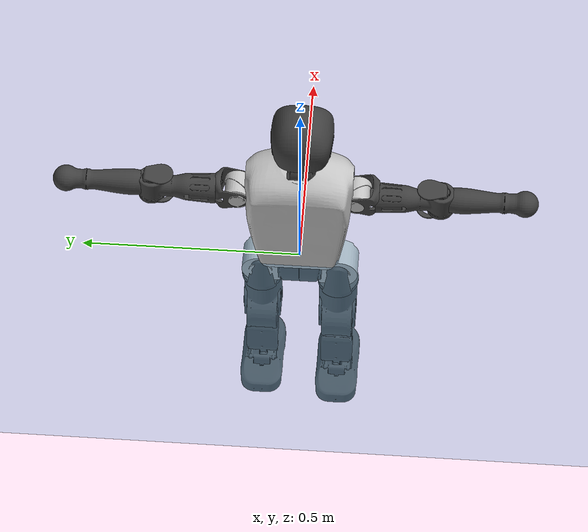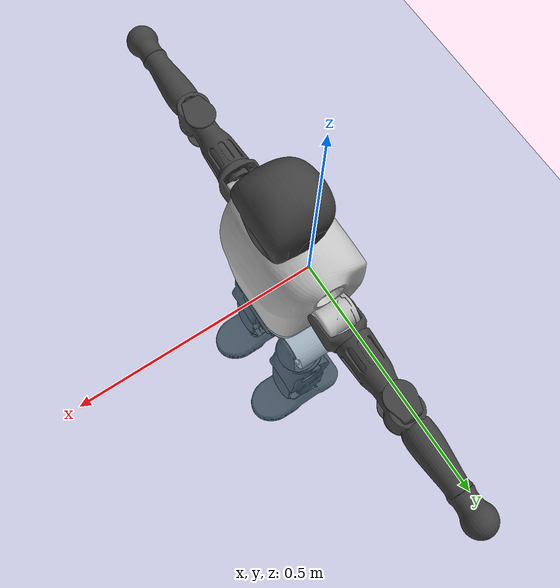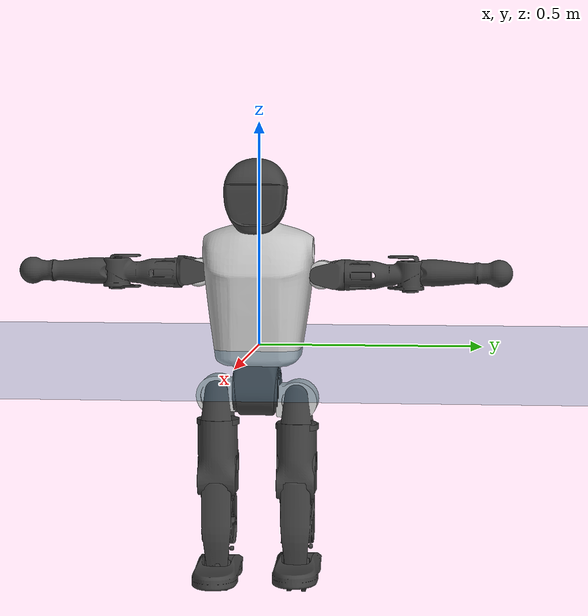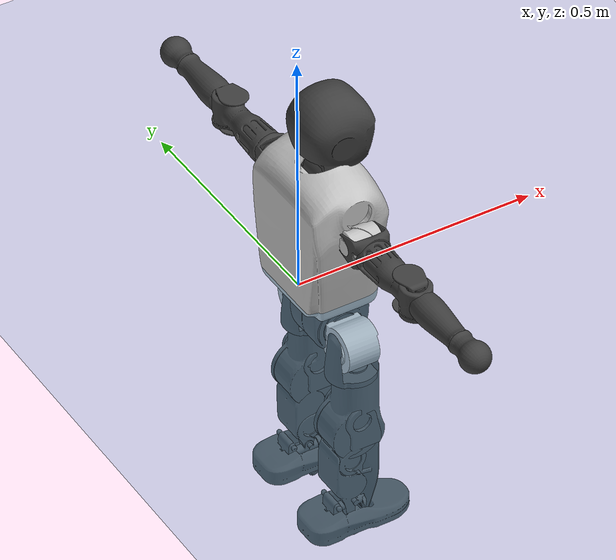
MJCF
<mujoco model="T1">
  <compiler angle="radian" assetdir="assets" balanceinertia="true" inertiafromgeom="false"/>

  <option timestep="0.005" density="1.2" viscosity="2e-05"/>

  <size nkey="1"/>

  <visual>
    <quality shadowsize="8192"/>
    <map shadowclip="0.5"/>
  </visual>

  <default>
    <default class="/">
      <joint armature="0.01" damping="0.01" frictionloss="0.1"/>
      <geom contype="0" conaffinity="0" group="1" solref="-1000 -80"/>
      <site size="0.01 0.005 0.005" group="5"/>
      <general forcelimited="true" biastype="affine" gainprm="25" biasprm="0 -25 -0.6"/>
      <default class="t1">
        <geom rgba="0.25 0.25 0.25 1"/>
        <default class="visual">
          <geom type="mesh" group="2"/>
        </default>
        <default class="collision">
          <geom group="3"/>
        </default>
        <default class="foot">
          <geom size="0.1115 0.05 0.015" type="box" condim="6" group="4" priority="1" solimp="0.015 1 0.015"/>
        </default>
        <default class="reward_collision_sphere">
          <geom group="5" rgba="1 0 0 1"/>
        </default>
      </default>
    </default>
  </default>

  <asset>
    <texture type="skybox" colorspace="auto" name="//unnamed_texture_0" builtin="gradient" rgb1="0.95 0.95 0.95" rgb2="0.95 0.95 0.95" width="100" height="600"/>
    <texture type="2d" colorspace="auto" name="texplane" builtin="checker" rgb1="0.345 0.575 0.748" rgb2="0.345 0.575 0.748" markrgb="1 1 1" width="512" height="512"/>
    <material name="MatPlane" class="/" texture="texplane" texuniform="true" texrepeat="2 2" specular="0.9"/>
    <mesh name="Trunk" class="/" file="Trunk.stl"/>
    <mesh name="H1" class="/" file="H1.stl"/>
    <mesh name="H2" class="/" file="H2.stl"/>
    <mesh name="AL1" class="/" file="AL1.stl"/>
    <mesh name="AL2" class="/" file="AL2.stl"/>
    <mesh name="AL3" class="/" file="AL3.stl"/>
    <mesh name="left_hand_link" class="/" file="left_hand_link.stl"/>
    <mesh name="AR1" class="/" file="AR1.stl"/>
    <mesh name="AR2" class="/" file="AR2.stl"/>
    <mesh name="AR3" class="/" file="AR3.stl"/>
    <mesh name="right_hand_link" class="/" file="right_hand_link.stl"/>
    <mesh name="Waist" class="/" file="Waist.stl"/>
    <mesh name="Hip_Pitch_Left" class="/" file="Hip_Pitch_Left.stl"/>
    <mesh name="Hip_Roll_Left" class="/" file="Hip_Roll_Left.stl"/>
    <mesh name="Hip_Yaw_Left" class="/" file="Hip_Yaw_Left.stl"/>
    <mesh name="Shank_Left" class="/" file="Shank_Left.stl"/>
    <mesh name="Ankle_Cross_Left" class="/" file="Ankle_Cross_Left.stl"/>
    <mesh name="left_foot_link" class="/" file="left_foot_link.stl"/>
    <mesh name="Hip_Pitch_Right" class="/" file="Hip_Pitch_Right.stl"/>
    <mesh name="Hip_Roll_Right" class="/" file="Hip_Roll_Right.stl"/>
    <mesh name="Hip_Yaw_Right" class="/" file="Hip_Yaw_Right.stl"/>
    <mesh name="Shank_Right" class="/" file="Shank_Right.stl"/>
    <mesh name="Ankle_Cross_Right" class="/" file="Ankle_Cross_Right.stl"/>
    <mesh name="right_foot_link" class="/" file="right_foot_link.stl"/>
  </asset>

  <worldbody>
    <geom name="floor" class="/" size="100 100 0.125" type="plane" group="0" material="MatPlane"/>
    <light name="toplight_shadow" class="/" pos="0 0 5" dir="0.0990148 0.0990148 -0.990148" type="directional" ambient="0.04 0.04 0.04" diffuse="0.55 0.55 0.55" specular="0.12 0.12 0.12"/>
    <light name="toplight_fill" class="/" pos="0 0 5" dir="0.0990148 0.0990148 -0.990148" type="directional" castshadow="false" ambient="0.04 0.04 0.04" diffuse="0.3 0.3 0.3" specular="0.08 0.08 0.08"/>
    <body name="trunk" childclass="t1" pos="-0.00125685 0.00356539 -0.0020469" quat="0.999998 -0.00172147 7.98052e-05 -0.000978103">
      <inertial pos="0.0531806 0.00139334 0.0819859" quat="0.999978 0.00202354 -0.00633936 0.000283987" mass="7.52762" diaginertia="0.0770432 0.0326268 0.0128177"/>
      <joint name="//unnamed_joint_0" type="free" armature="0" damping="0" frictionloss="0"/>
      <geom name="//unnamed_geom_1" class="visual" rgba="0.76 0.76 0.76 1" mesh="Trunk"/>
      <geom name="//unnamed_geom_2" class="collision" size="0.064906 0.0865414 0.129812" pos="0.0586928 0 0.0919741" type="box"/>
      <geom name="//unnamed_geom_3" class="reward_collision_sphere" size="0.0995226" pos="0.0586928 0 0.0766451"/>
      <geom name="//unnamed_geom_4" class="reward_collision_sphere" size="0.0129812" pos="0.0586928 0.072384 0"/>
      <geom name="//unnamed_geom_5" class="reward_collision_sphere" size="0.0129812" pos="0.0586928 -0.072384 0"/>
      <geom name="//unnamed_geom_6" class="reward_collision_sphere" size="0.0129812" pos="0.0586928 0.0911187 0.137961"/>
      <geom name="//unnamed_geom_7" class="reward_collision_sphere" size="0.0129812" pos="0.0586928 -0.0911187 0.137961"/>
      <site name="imu" pos="-0.0102396 -0.0104489 0.0108923" size="0.00865414"/>
      <camera name="track" pos="0 -1.70315 0" quat="0.707107 0.707107 0 0" mode="trackcom"/>
      <camera name="ego_camera" pos="0.119342 0 0.321909" quat="-0.5 -0.5 0.5 0.5"/>
      <body name="H1" pos="0.0570287 -0.00407051 0.187931" quat="1 -2.01819e-05 0.000169282 2.68899e-05">
        <inertial pos="0.00187097 -0.000448843 0.0418672" quat="0.76283 -0.0256934 0.0315448 0.645318" mass="0.279219" diaginertia="0.000222903 9.86166e-05 3.93957e-05"/>
        <joint name="AAHead_yaw" pos="0 0 0" axis="-0.00425334 0.0105586 0.999935" range="-1.58712 1.62216" armature="0.00987054" damping="0" frictionloss="0.0585116"/>
        <geom name="//unnamed_geom_8" class="visual" mesh="H1"/>
        <body name="H2" pos="-0.0032291 -1.30803e-05 0.046331" quat="1 5.71638e-05 -0.000264477 -0.000300533">
          <inertial pos="0.00869282 -0.000538086 0.0763282" quat="0.988581 0.102584 -0.078561 -0.0775383" mass="0.415407" diaginertia="0.00189227 0.000912509 0.000447425"/>
          <joint name="Head_pitch" pos="0 0 0" axis="-0.00113279 -0.999923 -0.0123834" range="-1.26055 0.390979" armature="0.0109511" damping="0.00365897" frictionloss="0.0771746"/>
          <geom name="//unnamed_geom_9" class="visual" mesh="H2"/>
          <geom name="//unnamed_geom_10" class="collision" size="0.0692331" pos="0.00978214 0 0.0843096"/>
          <geom name="//unnamed_geom_11" class="reward_collision_sphere" size="0.0778872" pos="0.0195643 0 0.0766451"/>
        </body>
      </body>
      <body name="AL1" pos="0.0568486 0.0946073 0.165619" quat="1 -2.00074e-05 0.000688295 0.000323713">
        <inertial pos="-0.000969886 0.0388528 0.00111711" quat="0.480477 0.494595 -0.518498 0.505645" mass="0.329875" diaginertia="0.00121702 0.000575633 7.34771e-05"/>
        <joint name="Left_Shoulder_Pitch" pos="0 0 0" axis="0.000749618 1 -0.000462247" range="-3.30874 1.2415" armature="0.00845312" damping="0.00312244" frictionloss="0.0758863"/>
        <geom name="//unnamed_geom_12" class="visual" rgba="0.76 0.76 0.76 1" mesh="AL1"/>
        <body name="AL2" pos="0.0016349 0.0414765 -0.000518285" quat="1 -1.11353e-06 3.73136e-06 -2.04012e-06">
          <inertial pos="0.00516247 0.0324665 -0.00102188" quat="0.488087 0.511651 -0.488068 0.511638" mass="0.102273" diaginertia="0.000351642 0.000155235 4.41616e-05"/>
          <joint name="Left_Shoulder_Roll" pos="0 0 0" axis="-0.999938 0.0078268 -0.00792312" range="-1.59252 1.72784" armature="0.00867101" damping="0" frictionloss="0.076985"/>
          <geom name="//unnamed_geom_13" class="visual" mesh="AL2"/>
          <body name="AL3" pos="-0.00291871 0.0535181 0.000133317" quat="0.999999 -0.000372918 0.000468926 -0.000928067">
            <inertial pos="0.00510792 0.0743798 0.000638792" quat="0.708076 0.706035 0.00179947 -0.0118152" mass="0.649178" diaginertia="0.0116205 0.00608308 0.000168601"/>
            <joint name="Left_Elbow_Pitch" pos="0 0 0" axis="-0.00275409 -0.999971 0.00705505" range="-2.27033 2.27678" armature="0.00897104" damping="0.00374708" frictionloss="0.0759643"/>
            <geom name="//unnamed_geom_14" class="visual" mesh="AL3"/>
            <geom name="//unnamed_geom_15" class="collision" size="0.0259624 0.064906" pos="0 0.0425788 0" quat="0.707105 0.707108 0 0" type="cylinder"/>
            <geom name="//unnamed_geom_16" class="reward_collision_sphere" size="0.0311549"/>
            <body name="left_hand_link" pos="0.000123146 0.12522 0.00632323" quat="0.999998 -0.000103783 -0.000613157 -0.00203769">
              <inertial pos="-0.000361358 0.0946832 -0.000873336" quat="0.708073 0.706139 -9.36538e-05 -0.000183436" mass="0.217417" diaginertia="0.0074284 0.00375969 6.28948e-05"/>
              <joint name="Left_Elbow_Yaw" pos="0 0 0" axis="-0.0116828 0.00700002 0.999907" range="-2.49258 -0.0267818" armature="0.00767946" damping="0.020262" frictionloss="0.0870254"/>
              <geom name="//unnamed_geom_17" class="visual" mesh="left_hand_link"/>
              <geom name="//unnamed_geom_18" class="collision" size="0.0259624 0.0757237" pos="0 0.110705 0" quat="0.707105 0.707108 0 0" type="cylinder"/>
              <geom name="//unnamed_geom_19" class="reward_collision_sphere" size="0.0432707"/>
              <geom name="//unnamed_geom_20" class="reward_collision_sphere" size="0.0302895" pos="0 0.0936734 0"/>
              <geom name="//unnamed_geom_21" class="reward_collision_sphere" size="0.0302895" pos="0 0.183089 0"/>
            </body>
          </body>
        </body>
      </body>
      <body name="AR1" pos="0.055984 -0.0849433 0.168714" quat="0.999999 0.000364557 -0.00105283 -0.000114131">
        <inertial pos="-0.000115021 -0.0349362 -0.00512416" quat="0.497821 0.503589 -0.507981 0.490436" mass="0.342573" diaginertia="0.00121459 0.000616686 7.72967e-05"/>
        <joint name="Right_Shoulder_Pitch" pos="0 0 0" axis="-0.0232823 -0.999721 -0.00405071" range="-1.27475 3.27307" armature="0.00935754" damping="0.0107218" frictionloss="0.0758373"/>
        <geom name="//unnamed_geom_22" class="visual" rgba="0.76 0.76 0.76 1" mesh="AR1"/>
        <body name="AR2" pos="-0.000356218 -0.0396547 0.00245383" quat="1 0.000195464 -0.00010143 9.66549e-05">
          <inertial pos="0.00422149 -0.0322866 0.000789644" quat="0.51108 0.488544 -0.511725 0.488118" mass="0.0980415" diaginertia="0.000327234 0.000139598 4.63534e-05"/>
          <joint name="Right_Shoulder_Roll" pos="0 0 0" axis="-0.999994 -0.00351875 -0.000433519" range="-1.73832 1.54918" armature="0.0105056" damping="0.00694856" frictionloss="0.0762796"/>
          <geom name="//unnamed_geom_23" class="visual" mesh="AR2"/>
          <body name="AR3" pos="-0.0022506 -0.0479024 -0.00425889" quat="0.999999 0.000697833 -0.000647953 0.00106583">
            <inertial pos="-0.00634699 -0.070832 -0.00379641" quat="0.706533 0.707679 -0.00121647 -0.000736883" mass="0.671728" diaginertia="0.012451 0.00583034 0.000164325"/>
            <joint name="Right_Elbow_Pitch" pos="0 0 0" axis="0.000241932 1 0.000234175" range="-2.31971 2.26731" armature="0.00826177" damping="0.00165411" frictionloss="0.0585918"/>
            <geom name="//unnamed_geom_24" class="visual" mesh="AR3"/>
            <geom name="//unnamed_geom_25" class="collision" size="0.0259624 0.064906" pos="0 -0.0425788 0" quat="0.707105 0.707108 0 0" type="cylinder"/>
            <geom name="//unnamed_geom_26" class="reward_collision_sphere" size="0.0311549"/>
            <body name="right_hand_link" pos="0.000661635 -0.121074 0.0030585" quat="1 0.000199201 -9.62356e-05 0.000370248">
              <inertial pos="-0.00042679 -0.0910468 -0.00137623" quat="0.707864 0.706345 0.00221654 -0.000163286" mass="0.20417" diaginertia="0.00678058 0.00337764 5.25043e-05"/>
              <joint name="Right_Elbow_Yaw" pos="0 0 0" axis="0.0231091 0.0177052 0.999576" range="-0.0396772 2.44524" armature="0.00829286" damping="0.00212345" frictionloss="0.0856669"/>
              <geom name="//unnamed_geom_27" class="visual" mesh="right_hand_link"/>
              <geom name="//unnamed_geom_28" class="collision" size="0.0259624 0.0757237" pos="0 -0.110705 0" quat="0.707105 0.707108 0 0" type="cylinder"/>
              <geom name="//unnamed_geom_29" class="reward_collision_sphere" size="0.0432707"/>
              <geom name="//unnamed_geom_30" class="reward_collision_sphere" size="0.0302895" pos="0 -0.0936734 0"/>
              <geom name="//unnamed_geom_31" class="reward_collision_sphere" size="0.0302895" pos="0 -0.183089 0"/>
            </body>
          </body>
        </body>
      </body>
      <body name="Waist" pos="0.0676001 -0.00169691 -0.089962" quat="0.999996 -0.000481071 0.00208008 -0.00171794">
        <inertial pos="0.00704484 -0.00212251 0.0073165" quat="0.986035 0.00174674 -0.165418 -0.019193" mass="1.7171" diaginertia="0.00467628 0.00225674 0.00118761"/>
        <joint name="Waist" pos="0 0 0" axis="-0.0032666 0.00152119 0.999994" range="-1.56921 1.61771" armature="0.00891925" damping="0.0102661" frictionloss="0.0847659"/>
        <geom name="//unnamed_geom_32" class="visual" mesh="Waist"/>
        <body name="Hip_Pitch_Left" pos="0.0038581 0.0922453 -0.00333885" quat="0.999999 -0.000390958 0.000104871 0.0010526">
          <inertial pos="-0.00383799 -0.00478838 -0.0148532" quat="0.973418 0.228992 -0.00380046 0.00224686" mass="0.674329" diaginertia="0.00169241 0.000629805 0.000321288"/>
          <joint name="Left_Hip_Pitch" pos="0 0 0" axis="-0.00435199 0.999909 -0.0127949" range="-1.78076 1.52091" armature="0.00858585" damping="0.0106222" frictionloss="0.0923748"/>
          <geom name="//unnamed_geom_33" class="visual" rgba="0.76 0.76 0.76 1" mesh="Hip_Pitch_Left"/>
          <body name="Hip_Roll_Left" pos="0.00576576 -0.00108864 -0.00677854" quat="1 8.6629e-06 -1.99676e-05 -3.1307e-05">
            <inertial pos="-5.75463e-05 0.00581073 -0.042286" quat="0.707401 -0.00623807 -0.00735902 0.706746" mass="0.256971" diaginertia="0.00167467 0.000741863 0.000128371"/>
            <joint name="Left_Hip_Roll" pos="0 0 0" axis="-0.999995 -0.0029691 -0.00112512" range="-1.61686 0.203533" armature="0.00966121" damping="0.0373604" frictionloss="0.0764132"/>
            <geom name="//unnamed_geom_34" class="visual" mesh="Hip_Roll_Left"/>
            <geom name="//unnamed_geom_35" class="reward_collision_sphere" size="0.0475978"/>
            <body name="Hip_Yaw_Left" pos="0.00547537 -0.000851472 -0.0610797" quat="1 -6.55269e-06 -0.000146751 -0.000146875">
              <inertial pos="-0.00457795 0.00121299 -0.0666936" quat="0.702205 -0.0380911 -0.0322473 0.710223" mass="1.45102" diaginertia="0.0236212 0.0122179 0.000731557"/>
              <joint name="Left_Hip_Yaw" pos="0 0 0" axis="0.000352925 -0.00107005 -0.999999" stiffness="0.018032" range="-0.888097 0.960399" armature="0.00879587" damping="0.00141003" frictionloss="0.0838984"/>
              <geom name="//unnamed_geom_36" class="visual" mesh="Hip_Yaw_Left"/>
              <geom name="//unnamed_geom_37" class="collision" size="0.0432707 0.0692331" type="cylinder"/>
              <body name="Shank_Left" pos="-0.00701812 0.000632565 -0.0923932" quat="1 0.000110447 0.000154483 4.01243e-06">
                <inertial pos="-0.00334267 0.00103905 -0.094297" quat="0.997598 -0.000215667 -0.0246863 0.0647144" mass="1.15136" diaginertia="0.0314798 0.01706 0.000523045"/>
                <joint name="Left_Knee_Pitch" pos="0 0 0" axis="0.000281008 0.999994 0.0033712" stiffness="0.00137999" range="-0.00627819 2.35869" armature="0.00793808" damping="0.0120619" frictionloss="0.0804409"/>
                <geom name="//unnamed_geom_38" class="visual" mesh="Shank_Left"/>
                <geom name="//unnamed_geom_39" class="collision" size="0.0432707 0.064906" pos="0 0 -0.0919741" type="cylinder"/>
                <geom name="//unnamed_geom_40" class="reward_collision_sphere" size="0.0562519"/>
                <body name="Ankle_Cross_Left" pos="-0.00446061 -0.000501026 -0.221142" quat="1 -1.81446e-05 -1.41562e-05 -8.02381e-06">
                  <inertial pos="0.00297251 0.00300876 -0.00635623" quat="0.440974 0.551988 0.554159 0.44018" mass="0.0483961" diaginertia="2.59421e-05 1.14404e-05 3.02729e-06"/>
                  <joint name="Left_Ankle_Pitch" pos="0 0 0" axis="0.00010802 1 6.32032e-05" stiffness="0.0112724" range="-0.866864 0.362852" armature="0.00608604" damping="0" frictionloss="0.0923919"/>
                  <geom name="//unnamed_geom_41" class="visual" mesh="Ankle_Cross_Left"/>
                  <body name="left_foot_link" pos="-0.00195657 0.00146228 -0.010525" quat="0.999995 0.00300309 0.00129406 -0.000320931">
                    <inertial pos="0.00204469 0.000278886 -0.00946491" quat="-0.00789203 0.619364 -0.0202599 0.784803" mass="0.416991" diaginertia="0.00223868 0.00104069 0.000550835"/>
                    <joint name="Left_Ankle_Roll" pos="0 0 0" axis="-0.999527 -0.0259546 -0.0164696" range="-0.411237 0.418161" armature="0.00823223" damping="0.0187759" frictionloss="0.0764359"/>
                    <geom name="//unnamed_geom_42" class="visual" mesh="left_foot_link"/>
                    <geom name="left_foot" class="foot" size="0.097392 0.0523193 0.0112622" pos="0.00978214 0 -0.0114968"/>
                    <geom name="//unnamed_geom_44" class="reward_collision_sphere" size="0.0450015" pos="0.00978214 0 -0.0114968"/>
                    <geom name="//unnamed_geom_45" class="reward_collision_sphere" size="0.0259624" pos="0.0929303 -0.0195863 -0.0114968"/>
                    <geom name="//unnamed_geom_46" class="reward_collision_sphere" size="0.0259624" pos="-0.068475 -0.0195863 -0.0114968"/>
                    <site name="left_foot" class="foot" pos="0.00978214 0 -0.0114968" size="0.00865414"/>
                  </body>
                </body>
              </body>
            </body>
          </body>
        </body>
        <body name="Hip_Pitch_Right" pos="-0.00404162 -0.089954 0.00603691" quat="1 0.000493755 0.0004268 5.7473e-05">
          <inertial pos="0.00566708 0.0103732 -0.0151604" quat="0.974037 -0.226111 0.0101051 0.00489094" mass="0.665387" diaginertia="0.00157523 0.000631324 0.000338154"/>
          <joint name="Right_Hip_Pitch" pos="0 0 0" axis="-0.00709846 -0.999972 -0.00232453" range="-1.61477 1.81886" armature="0.0081023" damping="0.0312185" frictionloss="0.091655"/>
          <geom name="//unnamed_geom_47" class="visual" rgba="0.76 0.76 0.76 1" mesh="Hip_Pitch_Right"/>
          <body name="Hip_Roll_Right" pos="0.000586959 0.00209851 -0.00940766" quat="1 -0.000200951 0.000106333 0.000101695">
            <inertial pos="0.0027972 0.00134432 -0.0426766" quat="0.710101 0.00366484 -0.0195995 0.703817" mass="0.24533" diaginertia="0.00141625 0.000642757 0.000130282"/>
            <joint name="Right_Hip_Roll" pos="0 0 0" axis="-0.999996 -0.00280411 0.00105715" range="-0.24982 1.58878" armature="0.0082967" damping="0.0175014" frictionloss="0.0801154"/>
            <geom name="//unnamed_geom_48" class="visual" mesh="Hip_Roll_Right"/>
            <geom name="//unnamed_geom_49" class="reward_collision_sphere" size="0.0475978"/>
            <body name="Hip_Yaw_Right" pos="0.00558094 -0.000115635 -0.0653165" quat="1 0.000451796 -8.90176e-05 0.000571793">
              <inertial pos="-0.00834229 -0.00162701 -0.0691101" quat="0.712075 -0.0319448 -0.0345785 0.700523" mass="1.34604" diaginertia="0.020892 0.0107467 0.000617279"/>
              <joint name="Right_Hip_Yaw" pos="0 0 0" axis="0.00261608 -0.000667077 -0.999996" range="-1.00938 1.00651" armature="0.00965904" damping="0" frictionloss="0.0793772"/>
              <geom name="//unnamed_geom_50" class="visual" mesh="Hip_Yaw_Right"/>
              <geom name="//unnamed_geom_51" class="collision" size="0.0432707 0.0692331" type="cylinder"/>
              <body name="Shank_Right" pos="-0.0103612 0.000206815 -0.101212" quat="1 -0.000254315 0.000438758 0.000610888">
                <inertial pos="-0.00667084 0.00312665 -0.093175" quat="0.999582 0.00253462 -0.0190789 -0.021581" mass="1.09239" diaginertia="0.0304944 0.0154782 0.000538667"/>
                <joint name="Right_Knee_Pitch" pos="0 0 0" axis="0.00897037 -0.999958 0.00212786" stiffness="0.00154036" range="-2.25168 0.00252787" armature="0.00773298" damping="0.00943594" frictionloss="0.0762497"/>
                <geom name="//unnamed_geom_52" class="visual" mesh="Shank_Right"/>
                <geom name="//unnamed_geom_53" class="collision" size="0.0432707 0.064906" pos="0 0 -0.0919741" type="cylinder"/>
                <geom name="//unnamed_geom_54" class="reward_collision_sphere" size="0.0562519"/>
                <body name="Ankle_Cross_Right" pos="0.00283404 0.00176663 -0.216648" quat="1 0.000283958 -0.000100045 0.000222684">
                  <inertial pos="-0.00501556 0.000452079 -0.00622104" quat="0.442877 0.550663 0.552549 0.44195" mass="0.0484171" diaginertia="2.49528e-05 1.18002e-05 2.88242e-06"/>
                  <joint name="Right_Ankle_Pitch" pos="0 0 0" axis="-0.00386442 -0.99981 -0.019117" stiffness="0.0111047" range="-0.366843 0.913522" armature="0.00870448" damping="0.00836451" frictionloss="0.0835905"/>
                  <geom name="//unnamed_geom_55" class="visual" mesh="Ankle_Cross_Right"/>
                  <body name="right_foot_link" pos="-0.00240763 -0.00361028 -0.0197987" quat="1 2.91703e-05 7.9852e-05 9.69958e-05">
                    <inertial pos="-0.000151681 -0.00336118 -0.000926504" quat="-0.0125474 0.615584 -0.0100599 0.787907" mass="0.476475" diaginertia="0.00268878 0.0011462 0.000668781"/>
                    <joint name="Right_Ankle_Roll" pos="0 0 0" axis="-0.999984 0.0039534 -0.00413499" stiffness="0.00704428" range="-0.383793 0.341952" armature="0.0116104" damping="0.0356028" frictionloss="0.0790732"/>
                    <geom name="//unnamed_geom_56" class="visual" mesh="right_foot_link"/>
                    <geom name="right_foot" class="foot" size="0.0883958 0.048759 0.0113254" pos="0.00978214 0 -0.0114968"/>
                    <geom name="//unnamed_geom_58" class="reward_collision_sphere" size="0.0346165"/>
                    <geom name="//unnamed_geom_59" class="reward_collision_sphere" size="0.0259624" pos="0.00978214 0 -0.0114968"/>
                    <geom name="//unnamed_geom_60" class="reward_collision_sphere" size="0.0259624" pos="0.0929303 0.0195863 -0.0114968"/>
                    <geom name="//unnamed_geom_61" class="reward_collision_sphere" size="0.0259624" pos="-0.068475 0.0195863 -0.0114968"/>
                    <site name="right_foot" class="foot" pos="0.00978214 0 -0.0114968" size="0.00865414"/>
                  </body>
                </body>
              </body>
            </body>
          </body>
        </body>
      </body>
    </body>
  </worldbody>

  <contact>
    <pair class="/" geom1="floor" geom2="left_foot" name="//unnamed_contact_0"/>
    <pair class="/" geom1="floor" geom2="right_foot" name="//unnamed_contact_1"/>
  </contact>

  <actuator>
    <general name="AAHead_yaw" class="/" joint="AAHead_yaw" forcerange="-6.20774 6.20774" gainprm="21.2567" biasprm="0 -21.2567 -0.518118"/>
    <general name="Head_pitch" class="/" joint="Head_pitch" forcerange="-6.22183 6.22183" gainprm="21.2567" biasprm="0 -21.2567 -0.518118"/>
    <general name="Left_Shoulder_Pitch" class="/" joint="Left_Shoulder_Pitch" forcerange="-19.3066 19.3066" gainprm="21.2567" biasprm="0 -21.2567 -0.518118"/>
    <general name="Left_Shoulder_Roll" class="/" joint="Left_Shoulder_Roll" forcerange="-17.8218 17.8218" gainprm="21.2567" biasprm="0 -21.2567 -0.518118"/>
    <general name="Left_Elbow_Pitch" class="/" joint="Left_Elbow_Pitch" forcerange="-14.8979 14.8979" gainprm="21.2567" biasprm="0 -21.2567 -0.518118"/>
    <general name="Left_Elbow_Yaw" class="/" joint="Left_Elbow_Yaw" forcerange="-15.8035 15.8035" gainprm="21.2567" biasprm="0 -21.2567 -0.518118"/>
    <general name="Right_Shoulder_Pitch" class="/" joint="Right_Shoulder_Pitch" forcerange="-14.3588 14.3588" gainprm="21.2567" biasprm="0 -21.2567 -0.518118"/>
    <general name="Right_Shoulder_Roll" class="/" joint="Right_Shoulder_Roll" forcerange="-14.5473 14.5473" gainprm="21.2567" biasprm="0 -21.2567 -0.518118"/>
    <general name="Right_Elbow_Pitch" class="/" joint="Right_Elbow_Pitch" forcerange="-17.0931 17.0931" gainprm="21.2567" biasprm="0 -21.2567 -0.518118"/>
    <general name="Right_Elbow_Yaw" class="/" joint="Right_Elbow_Yaw" forcerange="-14.1396 14.1396" gainprm="21.2567" biasprm="0 -21.2567 -0.518118"/>
    <general name="Waist" class="/" joint="Waist" forcerange="-28.995 28.995" gainprm="21.2567" biasprm="0 -21.2567 -0.518118"/>
    <general name="Left_Hip_Pitch" class="/" joint="Left_Hip_Pitch" forcerange="-42.3274 42.3274" gainprm="21.2567" biasprm="0 -21.2567 -0.518118"/>
    <general name="Left_Hip_Roll" class="/" joint="Left_Hip_Roll" forcerange="-27.3165 27.3165" gainprm="21.2567" biasprm="0 -21.2567 -0.518118"/>
    <general name="Left_Hip_Yaw" class="/" joint="Left_Hip_Yaw" forcerange="-26.2934 26.2934" gainprm="21.2567" biasprm="0 -21.2567 -0.518118"/>
    <general name="Left_Knee_Pitch" class="/" joint="Left_Knee_Pitch" forcerange="-51.5 51.5" gainprm="21.2567" biasprm="0 -21.2567 -0.518118"/>
    <general name="Left_Ankle_Pitch" class="/" joint="Left_Ankle_Pitch" forcerange="-17.4777 17.4777" gainprm="21.2567" biasprm="0 -21.2567 -0.518118"/>
    <general name="Left_Ankle_Roll" class="/" joint="Left_Ankle_Roll" forcerange="-13.8348 13.8348" gainprm="21.2567" biasprm="0 -21.2567 -0.518118"/>
    <general name="Right_Hip_Pitch" class="/" joint="Right_Hip_Pitch" forcerange="-33.1341 33.1341" gainprm="21.2567" biasprm="0 -21.2567 -0.518118"/>
    <general name="Right_Hip_Roll" class="/" joint="Right_Hip_Roll" forcerange="-20.0997 20.0997" gainprm="21.2567" biasprm="0 -21.2567 -0.518118"/>
    <general name="Right_Hip_Yaw" class="/" joint="Right_Hip_Yaw" forcerange="-26.4265 26.4265" gainprm="21.2567" biasprm="0 -21.2567 -0.518118"/>
    <general name="Right_Knee_Pitch" class="/" joint="Right_Knee_Pitch" forcerange="-51.9558 51.9558" gainprm="21.2567" biasprm="0 -21.2567 -0.518118"/>
    <general name="Right_Ankle_Pitch" class="/" joint="Right_Ankle_Pitch" forcerange="-21.0665 21.0665" gainprm="21.2567" biasprm="0 -21.2567 -0.518118"/>
    <general name="Right_Ankle_Roll" class="/" joint="Right_Ankle_Roll" forcerange="-11.6436 11.6436" gainprm="21.2567" biasprm="0 -21.2567 -0.518118"/>
  </actuator>

  <sensor>
    <gyro site="imu" name="imu_angular_velocity"/>
    <velocimeter site="imu" name="imu_linear_velocity"/>
    <framelinvel objtype="site" objname="left_foot" name="left_foot_global_linear_velocity"/>
    <framelinvel objtype="site" objname="right_foot" name="right_foot_global_linear_velocity"/>
  </sensor>

  <keyframe>
    <key name="home" qpos="0 0 0.6385 1 0 0 0 0 0 0 1.4 0 -0.4 0 -1.4 0 0.4 0 -0.4 0 0 0.8 -0.4 0 0.4 0 0 -0.8 0.4 0"/>
  </keyframe>
</mujoco>
